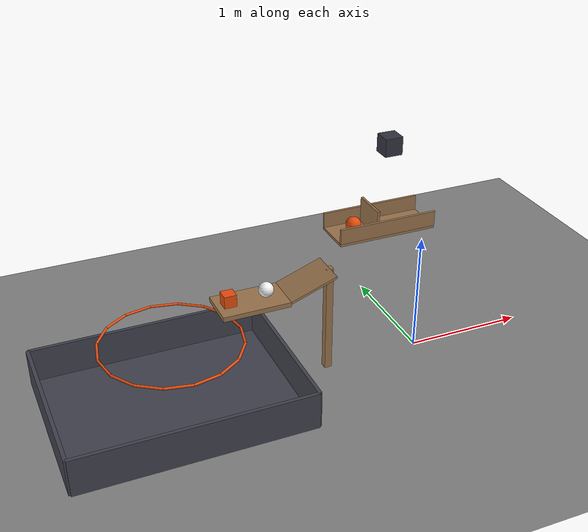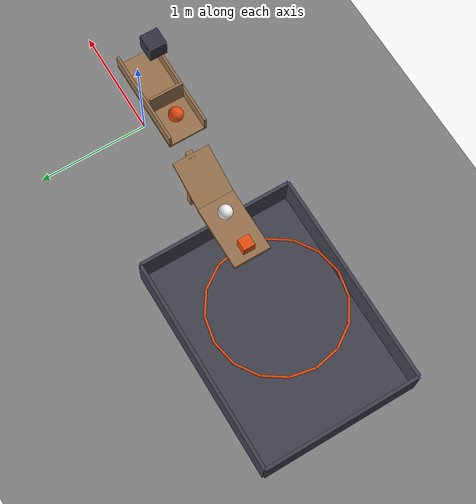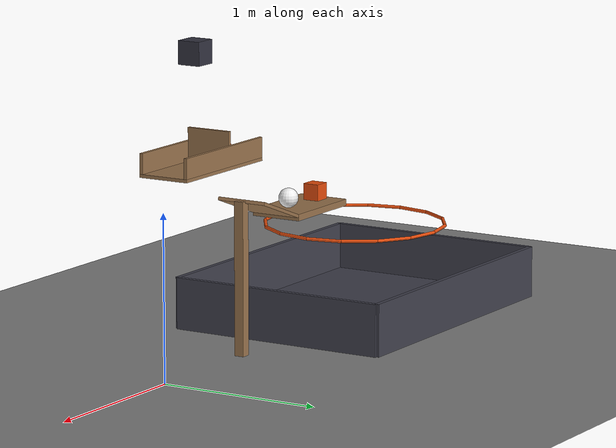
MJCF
<mujoco model="falling_weight_and_transfer_balls">
  <compiler angle="radian"/>
  <option timestep="0.002"/>
  <worldbody>
    <geom name="floor" type="plane" size="8 8 0.1" friction="0.8 0.005 0.002"/>
    <body name="tray" pos="0 0 1.2">
      <joint name="tray_hinge" type="hinge" pos="0 0 0" axis="0 1 0" limited="true" range="-0.314159 0" stiffness="20" springref="0.436332" damping="2" armature="0.03"/>
      <geom name="tray" type="box" pos="-0.4 0 0" size="0.4 0.16 0.01" mass="0.7" friction="0.5 0.002 0.0005" solref="0.01 1" rgba="0.6 0.45 0.3 1"/>
      <geom name="tray left wall" type="box" pos="-0.4 0.15 0.07" size="0.4 0.01 0.06" mass="0.03" solref="0.01 1" rgba="0.6 0.45 0.3 1"/>
      <geom name="tray right wall" type="box" pos="-0.4 -0.15 0.07" size="0.4 0.01 0.06" mass="0.03" solref="0.01 1" rgba="0.6 0.45 0.3 1"/>
      <geom name="weight retaining wall" type="box" pos="-0.48 0 0.11" size="0.01 0.14 0.1" mass="0.05" friction="0.6 0.005 0.0001" solref="0.01 1" rgba="0.6 0.45 0.3 1"/>
    </body>
    <body name="weight" pos="-0.34 0 1.88">
      <freejoint/>
      <geom name="weight" type="box" pos="0 0 0" size="0.07 0.07 0.07" mass="8" friction="0.6 0.005 0.0001" solref="0.01 1" rgba="0.2 0.2 0.25 1"/>
    </body>
    <body name="ball1" pos="-0.62 0 1.27">
      <freejoint/>
      <geom name="ball1" type="sphere" pos="0 0 0" size="0.06" mass="0.45" condim="6" friction="0.5 0.002 0.0005" solref="0.01 1" rgba="0.9 0.3 0.05 1"/>
    </body>
    <body name="spill ramp">
      <geom name="spill ramp_deck" type="box" pos="-1.01 0 0.86" size="0.202485 0.16 0.01" euler="0 2.7886 0" friction="0.35 0.002 0.0005" solref="0.01 1" rgba="0.6 0.45 0.3 1"/>
      <geom name="spill ramp_leg" type="box" pos="-0.82 0 0.465" size="0.03 0.03 0.465" friction="0.35 0.002 0.0005" solref="0.01 1" rgba="0.6 0.45 0.3 1"/>
    </body>
    <body name="runway">
      <geom name="runway" type="box" pos="-1.475 0 0.78" size="0.275 0.16 0.02" friction="0.12 0.002 0.0005" solref="0.01 1" rgba="0.6 0.45 0.3 1"/>
    </body>
    <body name="ball2" pos="-1.345 0 0.86">
      <freejoint/>
      <geom name="ball2" type="sphere" pos="0 0 0" size="0.06" mass="0.45" condim="6" friction="0.5 0.002 0.0005" solref="0.01 1" rgba="0.95 0.95 0.95 1"/>
    </body>
    <body name="block" pos="-1.65 0 0.85">
      <freejoint/>
      <geom name="block" type="box" pos="0 0 0" size="0.05 0.05 0.05" mass="0.06" friction="0.03 0.002 0.001" solref="0.01 1" rgba="0.9 0.3 0.05 1"/>
    </body>
    <body name="hoop">
      <geom name="hoop_00" type="capsule" size="0.01" fromto="-1.56 0 0.57 -1.60263 0.214303 0.57" solref="0.01 1" rgba="0.9 0.3 0.05 1"/>
      <geom name="hoop_01" type="capsule" size="0.01" fromto="-1.60263 0.214303 0.57 -1.72402 0.39598 0.57" solref="0.01 1" rgba="0.9 0.3 0.05 1"/>
      <geom name="hoop_02" type="capsule" size="0.01" fromto="-1.72402 0.39598 0.57 -1.9057 0.517373 0.57" solref="0.01 1" rgba="0.9 0.3 0.05 1"/>
      <geom name="hoop_03" type="capsule" size="0.01" fromto="-1.9057 0.517373 0.57 -2.12 0.56 0.57" solref="0.01 1" rgba="0.9 0.3 0.05 1"/>
      <geom name="hoop_04" type="capsule" size="0.01" fromto="-2.12 0.56 0.57 -2.3343 0.517373 0.57" solref="0.01 1" rgba="0.9 0.3 0.05 1"/>
      <geom name="hoop_05" type="capsule" size="0.01" fromto="-2.3343 0.517373 0.57 -2.51598 0.39598 0.57" solref="0.01 1" rgba="0.9 0.3 0.05 1"/>
      <geom name="hoop_06" type="capsule" size="0.01" fromto="-2.51598 0.39598 0.57 -2.63737 0.214303 0.57" solref="0.01 1" rgba="0.9 0.3 0.05 1"/>
      <geom name="hoop_07" type="capsule" size="0.01" fromto="-2.63737 0.214303 0.57 -2.68 6.85802e-17 0.57" solref="0.01 1" rgba="0.9 0.3 0.05 1"/>
      <geom name="hoop_08" type="capsule" size="0.01" fromto="-2.68 6.85802e-17 0.57 -2.63737 -0.214303 0.57" solref="0.01 1" rgba="0.9 0.3 0.05 1"/>
      <geom name="hoop_09" type="capsule" size="0.01" fromto="-2.63737 -0.214303 0.57 -2.51598 -0.39598 0.57" solref="0.01 1" rgba="0.9 0.3 0.05 1"/>
      <geom name="hoop_10" type="capsule" size="0.01" fromto="-2.51598 -0.39598 0.57 -2.3343 -0.517373 0.57" solref="0.01 1" rgba="0.9 0.3 0.05 1"/>
      <geom name="hoop_11" type="capsule" size="0.01" fromto="-2.3343 -0.517373 0.57 -2.12 -0.56 0.57" solref="0.01 1" rgba="0.9 0.3 0.05 1"/>
      <geom name="hoop_12" type="capsule" size="0.01" fromto="-2.12 -0.56 0.57 -1.9057 -0.517373 0.57" solref="0.01 1" rgba="0.9 0.3 0.05 1"/>
      <geom name="hoop_13" type="capsule" size="0.01" fromto="-1.9057 -0.517373 0.57 -1.72402 -0.39598 0.57" solref="0.01 1" rgba="0.9 0.3 0.05 1"/>
      <geom name="hoop_14" type="capsule" size="0.01" fromto="-1.72402 -0.39598 0.57 -1.60263 -0.214303 0.57" solref="0.01 1" rgba="0.9 0.3 0.05 1"/>
      <geom name="hoop_15" type="capsule" size="0.01" fromto="-1.60263 -0.214303 0.57 -1.56 -1.3716e-16 0.57" solref="0.01 1" rgba="0.9 0.3 0.05 1"/>
    </body>
    <body name="bin">
      <geom name="bin_base" type="box" pos="-2.15 0 0.015" size="0.95 0.7 0.015" friction="0.9 0.01 0.01" solref="0.01 1" rgba="0.25 0.25 0.3 1"/>
      <geom name="bin_near_wall" type="box" pos="-3.1 0 0.16" size="0.015 0.7 0.16" friction="0.9 0.01 0.01" solref="0.01 1" rgba="0.25 0.25 0.3 1"/>
      <geom name="bin_far_wall" type="box" pos="-1.2 0 0.16" size="0.015 0.7 0.16" friction="0.9 0.01 0.01" solref="0.01 1" rgba="0.25 0.25 0.3 1"/>
      <geom name="bin_left_wall" type="box" pos="-2.15 0.7 0.16" size="0.95 0.015 0.16" friction="0.9 0.01 0.01" solref="0.01 1" rgba="0.25 0.25 0.3 1"/>
      <geom name="bin_right_wall" type="box" pos="-2.15 -0.7 0.16" size="0.95 0.015 0.16" friction="0.9 0.01 0.01" solref="0.01 1" rgba="0.25 0.25 0.3 1"/>
    </body>
  </worldbody>
  <keyframe>
    <key name="start" qpos="0 -0.34 0 1.88 1 0 0 0 -0.62 0 1.27 1 0 0 0 -1.345 0 0.86 1 0 0 0 -1.65 0 0.85 1 0 0 0" qvel="0 0 0 0 0 0 0 0 0 0 0 0 0 0 0 0 0 0 0 0 0 0 0 0 0"/>
  </keyframe>
</mujoco>
